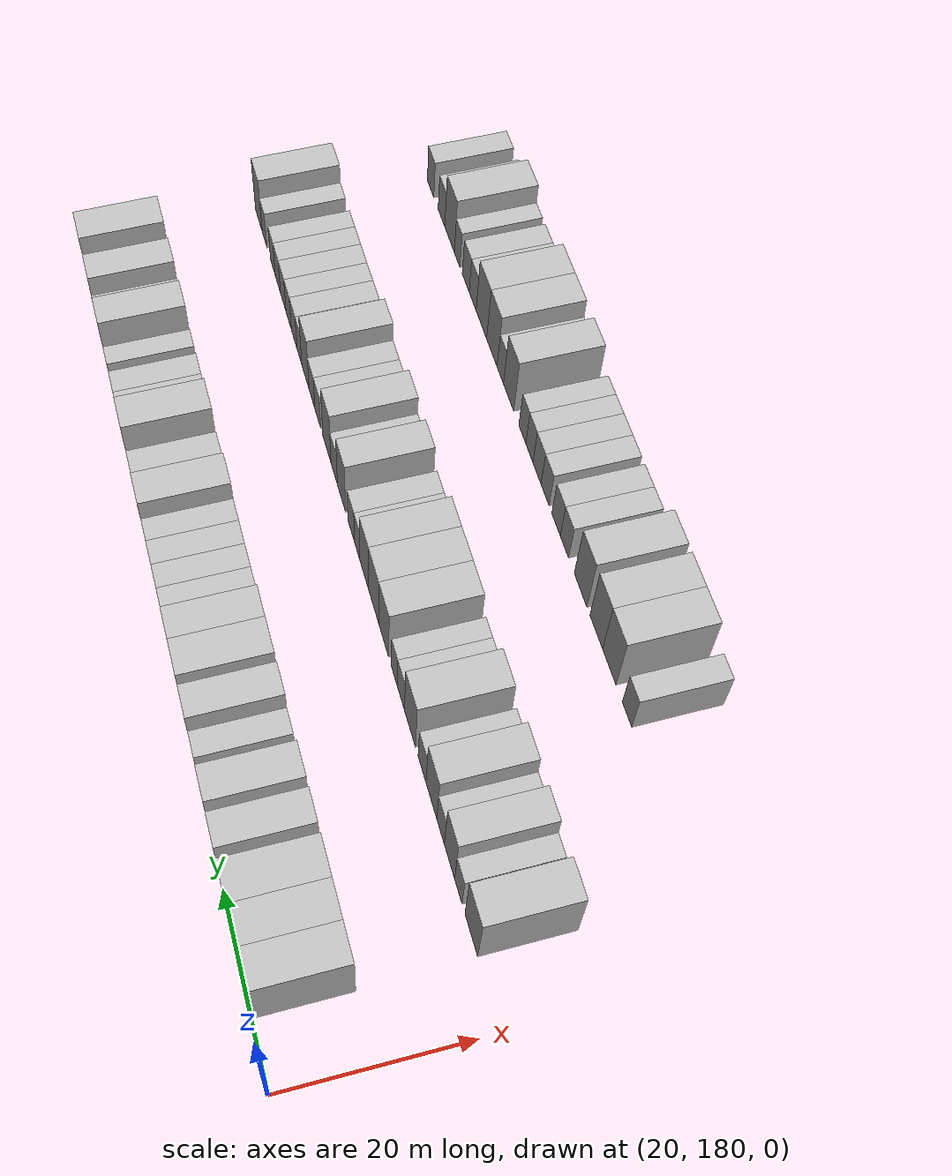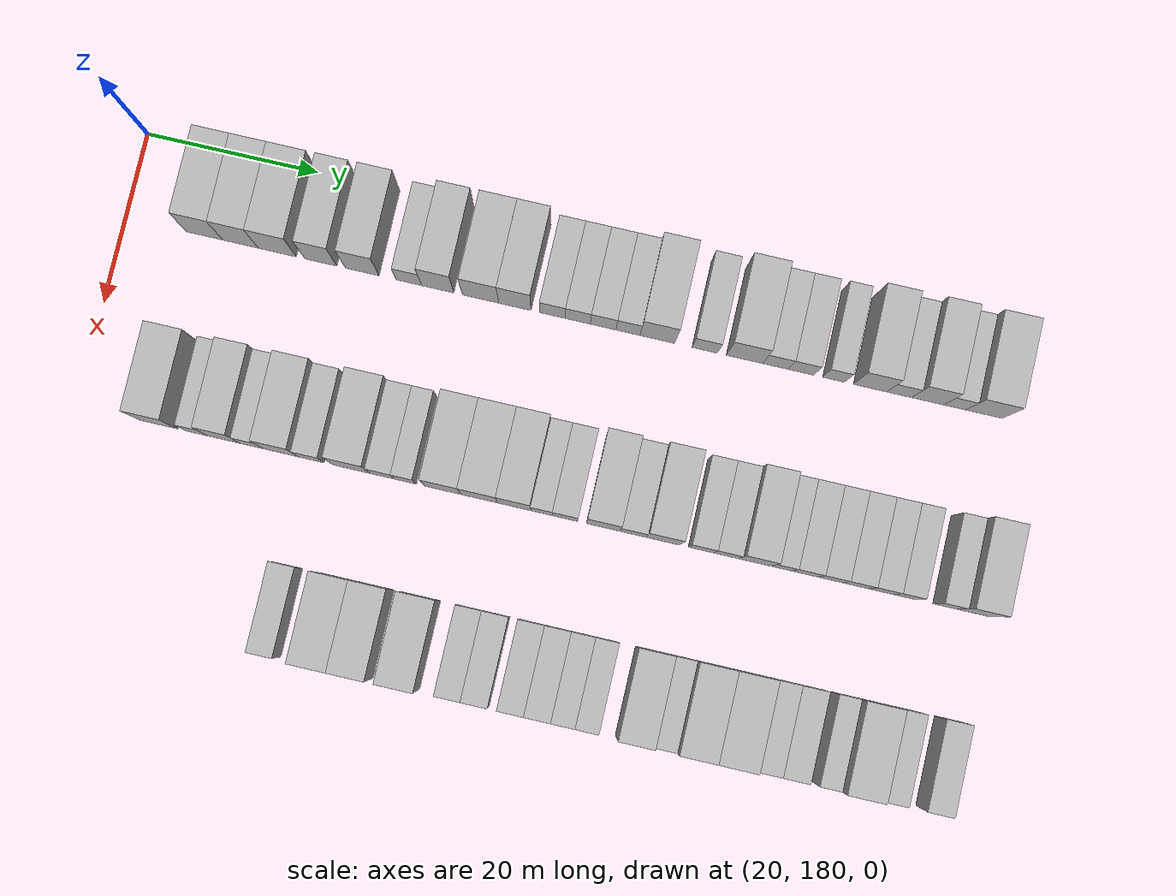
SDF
<sdf version="1.6">
 <world name="default">
  <model name="building_140">
   <static>1</static>
   <pose>25.0000 189.2454 0 0.000000 0.000000 0.000000</pose>
   <link name="link">
    <pose>0 0 4.50 0 0 0</pose>
    <collision name="collision"><geometry><box><size>10.0000 4.1937 9.0000</size></box></geometry></collision>
    <visual name="visual">
     <cast_shadows>0</cast_shadows>
     <geometry><box><size>10.0000 4.1937 9.0000</size></box></geometry>
     <material>
      <script>
       <uri>model://HANNAS_wall/materials/scripts</uri>
       <uri>model://HANNAS_wall/materials/textures</uri>
       <name>vrc/HANNAS_wall</name>
      </script>
     </material>
    </visual>
   </link>
  </model>
  <model name="building_141">
   <static>1</static>
   <pose>25.0000 193.4095 0 0.000000 0.000000 0.000000</pose>
   <link name="link">
    <pose>0 0 4.50 0 0 0</pose>
    <collision name="collision"><geometry><box><size>10.0000 4.1345 9.0000</size></box></geometry></collision>
    <visual name="visual">
     <cast_shadows>0</cast_shadows>
     <geometry><box><size>10.0000 4.1345 9.0000</size></box></geometry>
     <material>
      <script>
       <uri>model://HANNAS_wall/materials/scripts</uri>
       <uri>model://HANNAS_wall/materials/textures</uri>
       <name>vrc/HANNAS_wall</name>
      </script>
     </material>
    </visual>
   </link>
  </model>
  <model name="building_142">
   <static>1</static>
   <pose>25.0000 197.6893 0 0.000000 0.000000 0.000000</pose>
   <link name="link">
    <pose>0 0 4.50 0 0 0</pose>
    <collision name="collision"><geometry><box><size>10.0000 4.4251 9.0000</size></box></geometry></collision>
    <visual name="visual">
     <cast_shadows>0</cast_shadows>
     <geometry><box><size>10.0000 4.4251 9.0000</size></box></geometry>
     <material>
      <script>
       <uri>model://HANNAS_wall/materials/scripts</uri>
       <uri>model://HANNAS_wall/materials/textures</uri>
       <name>vrc/HANNAS_wall</name>
      </script>
     </material>
    </visual>
   </link>
  </model>
  <model name="building_143">
   <static>1</static>
   <pose>25.0000 202.7530 0 0.000000 0.000000 0.000000</pose>
   <link name="link">
    <pose>0 0 4.50 0 0 0</pose>
    <collision name="collision"><geometry><box><size>10.0000 3.7022 9.0000</size></box></geometry></collision>
    <visual name="visual">
     <cast_shadows>0</cast_shadows>
     <geometry><box><size>10.0000 3.7022 9.0000</size></box></geometry>
     <material>
      <script>
       <uri>model://HANNAS_wall/materials/scripts</uri>
       <uri>model://HANNAS_wall/materials/textures</uri>
       <name>vrc/HANNAS_wall</name>
      </script>
     </material>
    </visual>
   </link>
  </model>
  <model name="building_144">
   <static>1</static>
   <pose>25.0000 207.5599 0 0.000000 0.000000 0.000000</pose>
   <link name="link">
    <pose>0 0 4.50 0 0 0</pose>
    <collision name="collision"><geometry><box><size>10.0000 3.9117 9.0000</size></box></geometry></collision>
    <visual name="visual">
     <cast_shadows>0</cast_shadows>
     <geometry><box><size>10.0000 3.9117 9.0000</size></box></geometry>
     <material>
      <script>
       <uri>model://HANNAS_wall/materials/scripts</uri>
       <uri>model://HANNAS_wall/materials/textures</uri>
       <name>vrc/HANNAS_wall</name>
      </script>
     </material>
    </visual>
   </link>
  </model>
  <model name="building_145">
   <static>1</static>
   <pose>25.0000 212.9838 0 0.000000 0.000000 0.000000</pose>
   <link name="link">
    <pose>0 0 3.00 0 0 0</pose>
    <collision name="collision"><geometry><box><size>10.0000 2.9361 6.0000</size></box></geometry></collision>
    <visual name="visual">
     <cast_shadows>0</cast_shadows>
     <geometry><box><size>10.0000 2.9361 6.0000</size></box></geometry>
     <material>
      <script>
       <uri>model://HANNAS_wall/materials/scripts</uri>
       <uri>model://HANNAS_wall/materials/textures</uri>
       <name>vrc/HANNAS_wall</name>
      </script>
     </material>
    </visual>
   </link>
  </model>
  <model name="building_146">
   <static>1</static>
   <pose>25.0000 216.3185 0 0.000000 0.000000 0.000000</pose>
   <link name="link">
    <pose>0 0 4.50 0 0 0</pose>
    <collision name="collision"><geometry><box><size>10.0000 3.7333 9.0000</size></box></geometry></collision>
    <visual name="visual">
     <cast_shadows>0</cast_shadows>
     <geometry><box><size>10.0000 3.7333 9.0000</size></box></geometry>
     <material>
      <script>
       <uri>model://HANNAS_wall/materials/scripts</uri>
       <uri>model://HANNAS_wall/materials/textures</uri>
       <name>vrc/HANNAS_wall</name>
      </script>
     </material>
    </visual>
   </link>
  </model>
  <model name="building_147">
   <static>1</static>
   <pose>25.0000 221.2882 0 0.000000 0.000000 0.000000</pose>
   <link name="link">
    <pose>0 0 4.50 0 0 0</pose>
    <collision name="collision"><geometry><box><size>10.0000 4.2061 9.0000</size></box></geometry></collision>
    <visual name="visual">
     <cast_shadows>0</cast_shadows>
     <geometry><box><size>10.0000 4.2061 9.0000</size></box></geometry>
     <material>
      <script>
       <uri>model://HANNAS_wall/materials/scripts</uri>
       <uri>model://HANNAS_wall/materials/textures</uri>
       <name>vrc/HANNAS_wall</name>
      </script>
     </material>
    </visual>
   </link>
  </model>
  <model name="building_148">
   <static>1</static>
   <pose>25.0000 225.2576 0 0.000000 0.000000 0.000000</pose>
   <link name="link">
    <pose>0 0 4.50 0 0 0</pose>
    <collision name="collision"><geometry><box><size>10.0000 3.7326 9.0000</size></box></geometry></collision>
    <visual name="visual">
     <cast_shadows>0</cast_shadows>
     <geometry><box><size>10.0000 3.7326 9.0000</size></box></geometry>
     <material>
      <script>
       <uri>model://HANNAS_wall/materials/scripts</uri>
       <uri>model://HANNAS_wall/materials/textures</uri>
       <name>vrc/HANNAS_wall</name>
      </script>
     </material>
    </visual>
   </link>
  </model>
  <model name="building_149">
   <static>1</static>
   <pose>25.0000 229.5954 0 0.000000 0.000000 0.000000</pose>
   <link name="link">
    <pose>0 0 3.00 0 0 0</pose>
    <collision name="collision"><geometry><box><size>10.0000 2.9430 6.0000</size></box></geometry></collision>
    <visual name="visual">
     <cast_shadows>0</cast_shadows>
     <geometry><box><size>10.0000 2.9430 6.0000</size></box></geometry>
     <material>
      <script>
       <uri>model://HANNAS_wall/materials/scripts</uri>
       <uri>model://HANNAS_wall/materials/textures</uri>
       <name>vrc/HANNAS_wall</name>
      </script>
     </material>
    </visual>
   </link>
  </model>
  <model name="building_150">
   <static>1</static>
   <pose>25.0000 232.5193 0 0.000000 0.000000 0.000000</pose>
   <link name="link">
    <pose>0 0 3.00 0 0 0</pose>
    <collision name="collision"><geometry><box><size>10.0000 2.9049 6.0000</size></box></geometry></collision>
    <visual name="visual">
     <cast_shadows>0</cast_shadows>
     <geometry><box><size>10.0000 2.9049 6.0000</size></box></geometry>
     <material>
      <script>
       <uri>model://HANNAS_wall/materials/scripts</uri>
       <uri>model://HANNAS_wall/materials/textures</uri>
       <name>vrc/HANNAS_wall</name>
      </script>
     </material>
    </visual>
   </link>
  </model>
  <model name="building_151">
   <static>1</static>
   <pose>25.0000 235.4498 0 0.000000 0.000000 0.000000</pose>
   <link name="link">
    <pose>0 0 3.00 0 0 0</pose>
    <collision name="collision"><geometry><box><size>10.0000 2.9562 6.0000</size></box></geometry></collision>
    <visual name="visual">
     <cast_shadows>0</cast_shadows>
     <geometry><box><size>10.0000 2.9562 6.0000</size></box></geometry>
     <material>
      <script>
       <uri>model://HANNAS_wall/materials/scripts</uri>
       <uri>model://HANNAS_wall/materials/textures</uri>
       <name>vrc/HANNAS_wall</name>
      </script>
     </material>
    </visual>
   </link>
  </model>
  <model name="building_152">
   <static>1</static>
   <pose>25.0000 238.3135 0 0.000000 0.000000 0.000000</pose>
   <link name="link">
    <pose>0 0 3.00 0 0 0</pose>
    <collision name="collision"><geometry><box><size>10.0000 2.7711 6.0000</size></box></geometry></collision>
    <visual name="visual">
     <cast_shadows>0</cast_shadows>
     <geometry><box><size>10.0000 2.7711 6.0000</size></box></geometry>
     <material>
      <script>
       <uri>model://HANNAS_wall/materials/scripts</uri>
       <uri>model://HANNAS_wall/materials/textures</uri>
       <name>vrc/HANNAS_wall</name>
      </script>
     </material>
    </visual>
   </link>
  </model>
  <model name="building_153">
   <static>1</static>
   <pose>25.0000 241.7020 0 0.000000 0.000000 0.000000</pose>
   <link name="link">
    <pose>0 0 4.50 0 0 0</pose>
    <collision name="collision"><geometry><box><size>10.0000 4.0059 9.0000</size></box></geometry></collision>
    <visual name="visual">
     <cast_shadows>0</cast_shadows>
     <geometry><box><size>10.0000 4.0059 9.0000</size></box></geometry>
     <material>
      <script>
       <uri>model://HANNAS_wall/materials/scripts</uri>
       <uri>model://HANNAS_wall/materials/textures</uri>
       <name>vrc/HANNAS_wall</name>
      </script>
     </material>
    </visual>
   </link>
  </model>
  <model name="building_154">
   <static>1</static>
   <pose>25.0000 247.1800 0 0.000000 0.000000 0.000000</pose>
   <link name="link">
    <pose>0 0 3.00 0 0 0</pose>
    <collision name="collision"><geometry><box><size>10.0000 2.9500 6.0000</size></box></geometry></collision>
    <visual name="visual">
     <cast_shadows>0</cast_shadows>
     <geometry><box><size>10.0000 2.9500 6.0000</size></box></geometry>
     <material>
      <script>
       <uri>model://HANNAS_wall/materials/scripts</uri>
       <uri>model://HANNAS_wall/materials/textures</uri>
       <name>vrc/HANNAS_wall</name>
      </script>
     </material>
    </visual>
   </link>
  </model>
  <model name="building_155">
   <static>1</static>
   <pose>25.0000 251.7447 0 0.000000 0.000000 0.000000</pose>
   <link name="link">
    <pose>0 0 4.50 0 0 0</pose>
    <collision name="collision"><geometry><box><size>10.0000 4.1795 9.0000</size></box></geometry></collision>
    <visual name="visual">
     <cast_shadows>0</cast_shadows>
     <geometry><box><size>10.0000 4.1795 9.0000</size></box></geometry>
     <material>
      <script>
       <uri>model://HANNAS_wall/materials/scripts</uri>
       <uri>model://HANNAS_wall/materials/textures</uri>
       <name>vrc/HANNAS_wall</name>
      </script>
     </material>
    </visual>
   </link>
  </model>
  <model name="building_156">
   <static>1</static>
   <pose>25.0000 255.3090 0 0.000000 0.000000 0.000000</pose>
   <link name="link">
    <pose>0 0 3.00 0 0 0</pose>
    <collision name="collision"><geometry><box><size>10.0000 2.9490 6.0000</size></box></geometry></collision>
    <visual name="visual">
     <cast_shadows>0</cast_shadows>
     <geometry><box><size>10.0000 2.9490 6.0000</size></box></geometry>
     <material>
      <script>
       <uri>model://HANNAS_wall/materials/scripts</uri>
       <uri>model://HANNAS_wall/materials/textures</uri>
       <name>vrc/HANNAS_wall</name>
      </script>
     </material>
    </visual>
   </link>
  </model>
  <model name="building_157">
   <static>1</static>
   <pose>25.0000 258.2600 0 0.000000 0.000000 0.000000</pose>
   <link name="link">
    <pose>0 0 3.00 0 0 0</pose>
    <collision name="collision"><geometry><box><size>10.0000 2.9530 6.0000</size></box></geometry></collision>
    <visual name="visual">
     <cast_shadows>0</cast_shadows>
     <geometry><box><size>10.0000 2.9530 6.0000</size></box></geometry>
     <material>
      <script>
       <uri>model://HANNAS_wall/materials/scripts</uri>
       <uri>model://HANNAS_wall/materials/textures</uri>
       <name>vrc/HANNAS_wall</name>
      </script>
     </material>
    </visual>
   </link>
  </model>
  <model name="building_158">
   <static>1</static>
   <pose>25.0000 262.0031 0 0.000000 0.000000 0.000000</pose>
   <link name="link">
    <pose>0 0 3.00 0 0 0</pose>
    <collision name="collision"><geometry><box><size>10.0000 2.5333 6.0000</size></box></geometry></collision>
    <visual name="visual">
     <cast_shadows>0</cast_shadows>
     <geometry><box><size>10.0000 2.5333 6.0000</size></box></geometry>
     <material>
      <script>
       <uri>model://HANNAS_wall/materials/scripts</uri>
       <uri>model://HANNAS_wall/materials/textures</uri>
       <name>vrc/HANNAS_wall</name>
      </script>
     </material>
    </visual>
   </link>
  </model>
  <model name="building_159">
   <static>1</static>
   <pose>25.0000 266.1835 0 0.000000 0.000000 0.000000</pose>
   <link name="link">
    <pose>0 0 4.50 0 0 0</pose>
    <collision name="collision"><geometry><box><size>10.0000 3.8274 9.0000</size></box></geometry></collision>
    <visual name="visual">
     <cast_shadows>0</cast_shadows>
     <geometry><box><size>10.0000 3.8274 9.0000</size></box></geometry>
     <material>
      <script>
       <uri>model://HANNAS_wall/materials/scripts</uri>
       <uri>model://HANNAS_wall/materials/textures</uri>
       <name>vrc/HANNAS_wall</name>
      </script>
     </material>
    </visual>
   </link>
  </model>
  <model name="building_160">
   <static>1</static>
   <pose>25.0000 269.5204 0 0.000000 0.000000 0.000000</pose>
   <link name="link">
    <pose>0 0 3.00 0 0 0</pose>
    <collision name="collision"><geometry><box><size>10.0000 2.8465 6.0000</size></box></geometry></collision>
    <visual name="visual">
     <cast_shadows>0</cast_shadows>
     <geometry><box><size>10.0000 2.8465 6.0000</size></box></geometry>
     <material>
      <script>
       <uri>model://HANNAS_wall/materials/scripts</uri>
       <uri>model://HANNAS_wall/materials/textures</uri>
       <name>vrc/HANNAS_wall</name>
      </script>
     </material>
    </visual>
   </link>
  </model>
  <model name="building_161">
   <static>1</static>
   <pose>25.0000 272.7795 0 0.000000 0.000000 0.000000</pose>
   <link name="link">
    <pose>0 0 4.50 0 0 0</pose>
    <collision name="collision"><geometry><box><size>10.0000 3.6715 9.0000</size></box></geometry></collision>
    <visual name="visual">
     <cast_shadows>0</cast_shadows>
     <geometry><box><size>10.0000 3.6715 9.0000</size></box></geometry>
     <material>
      <script>
       <uri>model://HANNAS_wall/materials/scripts</uri>
       <uri>model://HANNAS_wall/materials/textures</uri>
       <name>vrc/HANNAS_wall</name>
      </script>
     </material>
    </visual>
   </link>
  </model>
  <model name="building_162">
   <static>1</static>
   <pose>25.0000 275.8817 0 0.000000 0.000000 0.000000</pose>
   <link name="link">
    <pose>0 0 3.00 0 0 0</pose>
    <collision name="collision"><geometry><box><size>10.0000 2.5330 6.0000</size></box></geometry></collision>
    <visual name="visual">
     <cast_shadows>0</cast_shadows>
     <geometry><box><size>10.0000 2.5330 6.0000</size></box></geometry>
     <material>
      <script>
       <uri>model://HANNAS_wall/materials/scripts</uri>
       <uri>model://HANNAS_wall/materials/textures</uri>
       <name>vrc/HANNAS_wall</name>
      </script>
     </material>
    </visual>
   </link>
  </model>
  <model name="building_163">
   <static>1</static>
   <pose>25.0000 279.2330 0 0.000000 0.000000 0.000000</pose>
   <link name="link">
    <pose>0 0 4.50 0 0 0</pose>
    <collision name="collision"><geometry><box><size>10.0000 4.1696 9.0000</size></box></geometry></collision>
    <visual name="visual">
     <cast_shadows>0</cast_shadows>
     <geometry><box><size>10.0000 4.1696 9.0000</size></box></geometry>
     <material>
      <script>
       <uri>model://HANNAS_wall/materials/scripts</uri>
       <uri>model://HANNAS_wall/materials/textures</uri>
       <name>vrc/HANNAS_wall</name>
      </script>
     </material>
    </visual>
   </link>
  </model>
  <model name="building_329">
   <static>1</static>
   <pose>47.0000 189.5351 0 0.000000 0.000000 0.000000</pose>
   <link name="link">
    <pose>0 0 4.50 0 0 0</pose>
    <collision name="collision"><geometry><box><size>10.0000 4.2912 9.0000</size></box></geometry></collision>
    <visual name="visual">
     <cast_shadows>0</cast_shadows>
     <geometry><box><size>10.0000 4.2912 9.0000</size></box></geometry>
     <material>
      <script>
       <uri>model://HANNAS_wall/materials/scripts</uri>
       <uri>model://HANNAS_wall/materials/textures</uri>
       <name>vrc/HANNAS_wall</name>
      </script>
     </material>
    </visual>
   </link>
  </model>
  <model name="building_330">
   <static>1</static>
   <pose>47.0000 193.9598 0 0.000000 0.000000 0.000000</pose>
   <link name="link">
    <pose>0 0 3.00 0 0 0</pose>
    <collision name="collision"><geometry><box><size>10.0000 2.5583 6.0000</size></box></geometry></collision>
    <visual name="visual">
     <cast_shadows>0</cast_shadows>
     <geometry><box><size>10.0000 2.5583 6.0000</size></box></geometry>
     <material>
      <script>
       <uri>model://HANNAS_wall/materials/scripts</uri>
       <uri>model://HANNAS_wall/materials/textures</uri>
       <name>vrc/HANNAS_wall</name>
      </script>
     </material>
    </visual>
   </link>
  </model>
  <model name="building_331">
   <static>1</static>
   <pose>47.0000 197.0719 0 0.000000 0.000000 0.000000</pose>
   <link name="link">
    <pose>0 0 4.50 0 0 0</pose>
    <collision name="collision"><geometry><box><size>10.0000 3.6661 9.0000</size></box></geometry></collision>
    <visual name="visual">
     <cast_shadows>0</cast_shadows>
     <geometry><box><size>10.0000 3.6661 9.0000</size></box></geometry>
     <material>
      <script>
       <uri>model://HANNAS_wall/materials/scripts</uri>
       <uri>model://HANNAS_wall/materials/textures</uri>
       <name>vrc/HANNAS_wall</name>
      </script>
     </material>
    </visual>
   </link>
  </model>
  <model name="building_332">
   <static>1</static>
   <pose>47.0000 200.2560 0 0.000000 0.000000 0.000000</pose>
   <link name="link">
    <pose>0 0 3.00 0 0 0</pose>
    <collision name="collision"><geometry><box><size>10.0000 2.7021 6.0000</size></box></geometry></collision>
    <visual name="visual">
     <cast_shadows>0</cast_shadows>
     <geometry><box><size>10.0000 2.7021 6.0000</size></box></geometry>
     <material>
      <script>
       <uri>model://HANNAS_wall/materials/scripts</uri>
       <uri>model://HANNAS_wall/materials/textures</uri>
       <name>vrc/HANNAS_wall</name>
      </script>
     </material>
    </visual>
   </link>
  </model>
  <model name="building_333">
   <static>1</static>
   <pose>47.0000 203.6150 0 0.000000 0.000000 0.000000</pose>
   <link name="link">
    <pose>0 0 4.50 0 0 0</pose>
    <collision name="collision"><geometry><box><size>10.0000 4.0159 9.0000</size></box></geometry></collision>
    <visual name="visual">
     <cast_shadows>0</cast_shadows>
     <geometry><box><size>10.0000 4.0159 9.0000</size></box></geometry>
     <material>
      <script>
       <uri>model://HANNAS_wall/materials/scripts</uri>
       <uri>model://HANNAS_wall/materials/textures</uri>
       <name>vrc/HANNAS_wall</name>
      </script>
     </material>
    </visual>
   </link>
  </model>
  <model name="building_334">
   <static>1</static>
   <pose>47.0000 207.0984 0 0.000000 0.000000 0.000000</pose>
   <link name="link">
    <pose>0 0 3.00 0 0 0</pose>
    <collision name="collision"><geometry><box><size>10.0000 2.9509 6.0000</size></box></geometry></collision>
    <visual name="visual">
     <cast_shadows>0</cast_shadows>
     <geometry><box><size>10.0000 2.9509 6.0000</size></box></geometry>
     <material>
      <script>
       <uri>model://HANNAS_wall/materials/scripts</uri>
       <uri>model://HANNAS_wall/materials/textures</uri>
       <name>vrc/HANNAS_wall</name>
      </script>
     </material>
    </visual>
   </link>
  </model>
  <model name="building_335">
   <static>1</static>
   <pose>47.0000 211.7146 0 0.000000 0.000000 0.000000</pose>
   <link name="link">
    <pose>0 0 4.50 0 0 0</pose>
    <collision name="collision"><geometry><box><size>10.0000 4.2815 9.0000</size></box></geometry></collision>
    <visual name="visual">
     <cast_shadows>0</cast_shadows>
     <geometry><box><size>10.0000 4.2815 9.0000</size></box></geometry>
     <material>
      <script>
       <uri>model://HANNAS_wall/materials/scripts</uri>
       <uri>model://HANNAS_wall/materials/textures</uri>
       <name>vrc/HANNAS_wall</name>
      </script>
     </material>
    </visual>
   </link>
  </model>
  <model name="building_336">
   <static>1</static>
   <pose>47.0000 215.2776 0 0.000000 0.000000 0.000000</pose>
   <link name="link">
    <pose>0 0 3.00 0 0 0</pose>
    <collision name="collision"><geometry><box><size>10.0000 2.8447 6.0000</size></box></geometry></collision>
    <visual name="visual">
     <cast_shadows>0</cast_shadows>
     <geometry><box><size>10.0000 2.8447 6.0000</size></box></geometry>
     <material>
      <script>
       <uri>model://HANNAS_wall/materials/scripts</uri>
       <uri>model://HANNAS_wall/materials/textures</uri>
       <name>vrc/HANNAS_wall</name>
      </script>
     </material>
    </visual>
   </link>
  </model>
  <model name="building_337">
   <static>1</static>
   <pose>47.0000 217.9155 0 0.000000 0.000000 0.000000</pose>
   <link name="link">
    <pose>0 0 3.00 0 0 0</pose>
    <collision name="collision"><geometry><box><size>10.0000 2.4310 6.0000</size></box></geometry></collision>
    <visual name="visual">
     <cast_shadows>0</cast_shadows>
     <geometry><box><size>10.0000 2.4310 6.0000</size></box></geometry>
     <material>
      <script>
       <uri>model://HANNAS_wall/materials/scripts</uri>
       <uri>model://HANNAS_wall/materials/textures</uri>
       <name>vrc/HANNAS_wall</name>
      </script>
     </material>
    </visual>
   </link>
  </model>
  <model name="building_338">
   <static>1</static>
   <pose>47.0000 222.2063 0 0.000000 0.000000 0.000000</pose>
   <link name="link">
    <pose>0 0 4.50 0 0 0</pose>
    <collision name="collision"><geometry><box><size>10.0000 4.1507 9.0000</size></box></geometry></collision>
    <visual name="visual">
     <cast_shadows>0</cast_shadows>
     <geometry><box><size>10.0000 4.1507 9.0000</size></box></geometry>
     <material>
      <script>
       <uri>model://HANNAS_wall/materials/scripts</uri>
       <uri>model://HANNAS_wall/materials/textures</uri>
       <name>vrc/HANNAS_wall</name>
      </script>
     </material>
    </visual>
   </link>
  </model>
  <model name="building_339">
   <static>1</static>
   <pose>47.0000 226.3808 0 0.000000 0.000000 0.000000</pose>
   <link name="link">
    <pose>0 0 4.50 0 0 0</pose>
    <collision name="collision"><geometry><box><size>10.0000 4.1982 9.0000</size></box></geometry></collision>
    <visual name="visual">
     <cast_shadows>0</cast_shadows>
     <geometry><box><size>10.0000 4.1982 9.0000</size></box></geometry>
     <material>
      <script>
       <uri>model://HANNAS_wall/materials/scripts</uri>
       <uri>model://HANNAS_wall/materials/textures</uri>
       <name>vrc/HANNAS_wall</name>
      </script>
     </material>
    </visual>
   </link>
  </model>
  <model name="building_340">
   <static>1</static>
   <pose>47.0000 230.3634 0 0.000000 0.000000 0.000000</pose>
   <link name="link">
    <pose>0 0 4.50 0 0 0</pose>
    <collision name="collision"><geometry><box><size>10.0000 3.7671 9.0000</size></box></geometry></collision>
    <visual name="visual">
     <cast_shadows>0</cast_shadows>
     <geometry><box><size>10.0000 3.7671 9.0000</size></box></geometry>
     <material>
      <script>
       <uri>model://HANNAS_wall/materials/scripts</uri>
       <uri>model://HANNAS_wall/materials/textures</uri>
       <name>vrc/HANNAS_wall</name>
      </script>
     </material>
    </visual>
   </link>
  </model>
  <model name="building_341">
   <static>1</static>
   <pose>47.0000 233.4624 0 0.000000 0.000000 0.000000</pose>
   <link name="link">
    <pose>0 0 3.00 0 0 0</pose>
    <collision name="collision"><geometry><box><size>10.0000 2.4308 6.0000</size></box></geometry></collision>
    <visual name="visual">
     <cast_shadows>0</cast_shadows>
     <geometry><box><size>10.0000 2.4308 6.0000</size></box></geometry>
     <material>
      <script>
       <uri>model://HANNAS_wall/materials/scripts</uri>
       <uri>model://HANNAS_wall/materials/textures</uri>
       <name>vrc/HANNAS_wall</name>
      </script>
     </material>
    </visual>
   </link>
  </model>
  <model name="building_342">
   <static>1</static>
   <pose>47.0000 236.1251 0 0.000000 0.000000 0.000000</pose>
   <link name="link">
    <pose>0 0 3.00 0 0 0</pose>
    <collision name="collision"><geometry><box><size>10.0000 2.8946 6.0000</size></box></geometry></collision>
    <visual name="visual">
     <cast_shadows>0</cast_shadows>
     <geometry><box><size>10.0000 2.8946 6.0000</size></box></geometry>
     <material>
      <script>
       <uri>model://HANNAS_wall/materials/scripts</uri>
       <uri>model://HANNAS_wall/materials/textures</uri>
       <name>vrc/HANNAS_wall</name>
      </script>
     </material>
    </visual>
   </link>
  </model>
  <model name="building_343">
   <static>1</static>
   <pose>47.0000 240.4562 0 0.000000 0.000000 0.000000</pose>
   <link name="link">
    <pose>0 0 4.50 0 0 0</pose>
    <collision name="collision"><geometry><box><size>10.0000 3.7675 9.0000</size></box></geometry></collision>
    <visual name="visual">
     <cast_shadows>0</cast_shadows>
     <geometry><box><size>10.0000 3.7675 9.0000</size></box></geometry>
     <material>
      <script>
       <uri>model://HANNAS_wall/materials/scripts</uri>
       <uri>model://HANNAS_wall/materials/textures</uri>
       <name>vrc/HANNAS_wall</name>
      </script>
     </material>
    </visual>
   </link>
  </model>
  <model name="building_344">
   <static>1</static>
   <pose>47.0000 243.8338 0 0.000000 0.000000 0.000000</pose>
   <link name="link">
    <pose>0 0 3.00 0 0 0</pose>
    <collision name="collision"><geometry><box><size>10.0000 2.9877 6.0000</size></box></geometry></collision>
    <visual name="visual">
     <cast_shadows>0</cast_shadows>
     <geometry><box><size>10.0000 2.9877 6.0000</size></box></geometry>
     <material>
      <script>
       <uri>model://HANNAS_wall/materials/scripts</uri>
       <uri>model://HANNAS_wall/materials/textures</uri>
       <name>vrc/HANNAS_wall</name>
      </script>
     </material>
    </visual>
   </link>
  </model>
  <model name="building_345">
   <static>1</static>
   <pose>47.0000 247.2604 0 0.000000 0.000000 0.000000</pose>
   <link name="link">
    <pose>0 0 4.50 0 0 0</pose>
    <collision name="collision"><geometry><box><size>10.0000 3.8655 9.0000</size></box></geometry></collision>
    <visual name="visual">
     <cast_shadows>0</cast_shadows>
     <geometry><box><size>10.0000 3.8655 9.0000</size></box></geometry>
     <material>
      <script>
       <uri>model://HANNAS_wall/materials/scripts</uri>
       <uri>model://HANNAS_wall/materials/textures</uri>
       <name>vrc/HANNAS_wall</name>
      </script>
     </material>
    </visual>
   </link>
  </model>
  <model name="building_346">
   <static>1</static>
   <pose>47.0000 251.6124 0 0.000000 0.000000 0.000000</pose>
   <link name="link">
    <pose>0 0 3.00 0 0 0</pose>
    <collision name="collision"><geometry><box><size>10.0000 2.8384 6.0000</size></box></geometry></collision>
    <visual name="visual">
     <cast_shadows>0</cast_shadows>
     <geometry><box><size>10.0000 2.8384 6.0000</size></box></geometry>
     <material>
      <script>
       <uri>model://HANNAS_wall/materials/scripts</uri>
       <uri>model://HANNAS_wall/materials/textures</uri>
       <name>vrc/HANNAS_wall</name>
      </script>
     </material>
    </visual>
   </link>
  </model>
  <model name="building_347">
   <static>1</static>
   <pose>47.0000 254.4365 0 0.000000 0.000000 0.000000</pose>
   <link name="link">
    <pose>0 0 3.00 0 0 0</pose>
    <collision name="collision"><geometry><box><size>10.0000 2.8099 6.0000</size></box></geometry></collision>
    <visual name="visual">
     <cast_shadows>0</cast_shadows>
     <geometry><box><size>10.0000 2.8099 6.0000</size></box></geometry>
     <material>
      <script>
       <uri>model://HANNAS_wall/materials/scripts</uri>
       <uri>model://HANNAS_wall/materials/textures</uri>
       <name>vrc/HANNAS_wall</name>
      </script>
     </material>
    </visual>
   </link>
  </model>
  <model name="building_348">
   <static>1</static>
   <pose>47.0000 257.6778 0 0.000000 0.000000 0.000000</pose>
   <link name="link">
    <pose>0 0 4.50 0 0 0</pose>
    <collision name="collision"><geometry><box><size>10.0000 3.6727 9.0000</size></box></geometry></collision>
    <visual name="visual">
     <cast_shadows>0</cast_shadows>
     <geometry><box><size>10.0000 3.6727 9.0000</size></box></geometry>
     <material>
      <script>
       <uri>model://HANNAS_wall/materials/scripts</uri>
       <uri>model://HANNAS_wall/materials/textures</uri>
       <name>vrc/HANNAS_wall</name>
      </script>
     </material>
    </visual>
   </link>
  </model>
  <model name="building_349">
   <static>1</static>
   <pose>47.0000 260.7254 0 0.000000 0.000000 0.000000</pose>
   <link name="link">
    <pose>0 0 3.00 0 0 0</pose>
    <collision name="collision"><geometry><box><size>10.0000 2.4224 6.0000</size></box></geometry></collision>
    <visual name="visual">
     <cast_shadows>0</cast_shadows>
     <geometry><box><size>10.0000 2.4224 6.0000</size></box></geometry>
     <material>
      <script>
       <uri>model://HANNAS_wall/materials/scripts</uri>
       <uri>model://HANNAS_wall/materials/textures</uri>
       <name>vrc/HANNAS_wall</name>
      </script>
     </material>
    </visual>
   </link>
  </model>
  <model name="building_350">
   <static>1</static>
   <pose>47.0000 263.4015 0 0.000000 0.000000 0.000000</pose>
   <link name="link">
    <pose>0 0 3.00 0 0 0</pose>
    <collision name="collision"><geometry><box><size>10.0000 2.9299 6.0000</size></box></geometry></collision>
    <visual name="visual">
     <cast_shadows>0</cast_shadows>
     <geometry><box><size>10.0000 2.9299 6.0000</size></box></geometry>
     <material>
      <script>
       <uri>model://HANNAS_wall/materials/scripts</uri>
       <uri>model://HANNAS_wall/materials/textures</uri>
       <name>vrc/HANNAS_wall</name>
      </script>
     </material>
    </visual>
   </link>
  </model>
  <model name="building_351">
   <static>1</static>
   <pose>47.0000 266.2505 0 0.000000 0.000000 0.000000</pose>
   <link name="link">
    <pose>0 0 3.00 0 0 0</pose>
    <collision name="collision"><geometry><box><size>10.0000 2.7680 6.0000</size></box></geometry></collision>
    <visual name="visual">
     <cast_shadows>0</cast_shadows>
     <geometry><box><size>10.0000 2.7680 6.0000</size></box></geometry>
     <material>
      <script>
       <uri>model://HANNAS_wall/materials/scripts</uri>
       <uri>model://HANNAS_wall/materials/textures</uri>
       <name>vrc/HANNAS_wall</name>
      </script>
     </material>
    </visual>
   </link>
  </model>
  <model name="building_352">
   <static>1</static>
   <pose>47.0000 269.1079 0 0.000000 0.000000 0.000000</pose>
   <link name="link">
    <pose>0 0 3.00 0 0 0</pose>
    <collision name="collision"><geometry><box><size>10.0000 2.9468 6.0000</size></box></geometry></collision>
    <visual name="visual">
     <cast_shadows>0</cast_shadows>
     <geometry><box><size>10.0000 2.9468 6.0000</size></box></geometry>
     <material>
      <script>
       <uri>model://HANNAS_wall/materials/scripts</uri>
       <uri>model://HANNAS_wall/materials/textures</uri>
       <name>vrc/HANNAS_wall</name>
      </script>
     </material>
    </visual>
   </link>
  </model>
  <model name="building_353">
   <static>1</static>
   <pose>47.0000 271.9712 0 0.000000 0.000000 0.000000</pose>
   <link name="link">
    <pose>0 0 3.00 0 0 0</pose>
    <collision name="collision"><geometry><box><size>10.0000 2.7799 6.0000</size></box></geometry></collision>
    <visual name="visual">
     <cast_shadows>0</cast_shadows>
     <geometry><box><size>10.0000 2.7799 6.0000</size></box></geometry>
     <material>
      <script>
       <uri>model://HANNAS_wall/materials/scripts</uri>
       <uri>model://HANNAS_wall/materials/textures</uri>
       <name>vrc/HANNAS_wall</name>
      </script>
     </material>
    </visual>
   </link>
  </model>
  <model name="building_354">
   <static>1</static>
   <pose>47.0000 274.6646 0 0.000000 0.000000 0.000000</pose>
   <link name="link">
    <pose>0 0 3.00 0 0 0</pose>
    <collision name="collision"><geometry><box><size>10.0000 2.6069 6.0000</size></box></geometry></collision>
    <visual name="visual">
     <cast_shadows>0</cast_shadows>
     <geometry><box><size>10.0000 2.6069 6.0000</size></box></geometry>
     <material>
      <script>
       <uri>model://HANNAS_wall/materials/scripts</uri>
       <uri>model://HANNAS_wall/materials/textures</uri>
       <name>vrc/HANNAS_wall</name>
      </script>
     </material>
    </visual>
   </link>
  </model>
  <model name="building_355">
   <static>1</static>
   <pose>47.0000 279.2722 0 0.000000 0.000000 0.000000</pose>
   <link name="link">
    <pose>0 0 3.00 0 0 0</pose>
    <collision name="collision"><geometry><box><size>10.0000 2.6082 6.0000</size></box></geometry></collision>
    <visual name="visual">
     <cast_shadows>0</cast_shadows>
     <geometry><box><size>10.0000 2.6082 6.0000</size></box></geometry>
     <material>
      <script>
       <uri>model://HANNAS_wall/materials/scripts</uri>
       <uri>model://HANNAS_wall/materials/textures</uri>
       <name>vrc/HANNAS_wall</name>
      </script>
     </material>
    </visual>
   </link>
  </model>
  <model name="building_356">
   <static>1</static>
   <pose>47.0000 282.4522 0 0.000000 0.000000 0.000000</pose>
   <link name="link">
    <pose>0 0 4.50 0 0 0</pose>
    <collision name="collision"><geometry><box><size>10.0000 3.7520 9.0000</size></box></geometry></collision>
    <visual name="visual">
     <cast_shadows>0</cast_shadows>
     <geometry><box><size>10.0000 3.7520 9.0000</size></box></geometry>
     <material>
      <script>
       <uri>model://HANNAS_wall/materials/scripts</uri>
       <uri>model://HANNAS_wall/materials/textures</uri>
       <name>vrc/HANNAS_wall</name>
      </script>
     </material>
    </visual>
   </link>
  </model>
  <model name="building_521">
   <static>1</static>
   <pose>69.0000 207.5459 0 0.000000 0.000000 0.000000</pose>
   <link name="link">
    <pose>0 0 3.00 0 0 0</pose>
    <collision name="collision"><geometry><box><size>10.0000 2.9376 6.0000</size></box></geometry></collision>
    <visual name="visual">
     <cast_shadows>0</cast_shadows>
     <geometry><box><size>10.0000 2.9376 6.0000</size></box></geometry>
     <material>
      <script>
       <uri>model://HANNAS_wall/materials/scripts</uri>
       <uri>model://HANNAS_wall/materials/textures</uri>
       <name>vrc/HANNAS_wall</name>
      </script>
     </material>
    </visual>
   </link>
  </model>
  <model name="building_522">
   <static>1</static>
   <pose>69.0000 213.1712 0 0.000000 0.000000 0.000000</pose>
   <link name="link">
    <pose>0 0 4.50 0 0 0</pose>
    <collision name="collision"><geometry><box><size>10.0000 4.3131 9.0000</size></box></geometry></collision>
    <visual name="visual">
     <cast_shadows>0</cast_shadows>
     <geometry><box><size>10.0000 4.3131 9.0000</size></box></geometry>
     <material>
      <script>
       <uri>model://HANNAS_wall/materials/scripts</uri>
       <uri>model://HANNAS_wall/materials/textures</uri>
       <name>vrc/HANNAS_wall</name>
      </script>
     </material>
    </visual>
   </link>
  </model>
  <model name="building_523">
   <static>1</static>
   <pose>69.0000 217.4056 0 0.000000 0.000000 0.000000</pose>
   <link name="link">
    <pose>0 0 4.50 0 0 0</pose>
    <collision name="collision"><geometry><box><size>10.0000 4.1556 9.0000</size></box></geometry></collision>
    <visual name="visual">
     <cast_shadows>0</cast_shadows>
     <geometry><box><size>10.0000 4.1556 9.0000</size></box></geometry>
     <material>
      <script>
       <uri>model://HANNAS_wall/materials/scripts</uri>
       <uri>model://HANNAS_wall/materials/textures</uri>
       <name>vrc/HANNAS_wall</name>
      </script>
     </material>
    </visual>
   </link>
  </model>
  <model name="building_524">
   <static>1</static>
   <pose>69.0000 222.6230 0 0.000000 0.000000 0.000000</pose>
   <link name="link">
    <pose>0 0 4.50 0 0 0</pose>
    <collision name="collision"><geometry><box><size>10.0000 4.2792 9.0000</size></box></geometry></collision>
    <visual name="visual">
     <cast_shadows>0</cast_shadows>
     <geometry><box><size>10.0000 4.2792 9.0000</size></box></geometry>
     <material>
      <script>
       <uri>model://HANNAS_wall/materials/scripts</uri>
       <uri>model://HANNAS_wall/materials/textures</uri>
       <name>vrc/HANNAS_wall</name>
      </script>
     </material>
    </visual>
   </link>
  </model>
  <model name="building_525">
   <static>1</static>
   <pose>69.0000 228.2190 0 0.000000 0.000000 0.000000</pose>
   <link name="link">
    <pose>0 0 3.00 0 0 0</pose>
    <collision name="collision"><geometry><box><size>10.0000 2.9126 6.0000</size></box></geometry></collision>
    <visual name="visual">
     <cast_shadows>0</cast_shadows>
     <geometry><box><size>10.0000 2.9126 6.0000</size></box></geometry>
     <material>
      <script>
       <uri>model://HANNAS_wall/materials/scripts</uri>
       <uri>model://HANNAS_wall/materials/textures</uri>
       <name>vrc/HANNAS_wall</name>
      </script>
     </material>
    </visual>
   </link>
  </model>
  <model name="building_526">
   <static>1</static>
   <pose>69.0000 231.1720 0 0.000000 0.000000 0.000000</pose>
   <link name="link">
    <pose>0 0 3.00 0 0 0</pose>
    <collision name="collision"><geometry><box><size>10.0000 2.9935 6.0000</size></box></geometry></collision>
    <visual name="visual">
     <cast_shadows>0</cast_shadows>
     <geometry><box><size>10.0000 2.9935 6.0000</size></box></geometry>
     <material>
      <script>
       <uri>model://HANNAS_wall/materials/scripts</uri>
       <uri>model://HANNAS_wall/materials/textures</uri>
       <name>vrc/HANNAS_wall</name>
      </script>
     </material>
    </visual>
   </link>
  </model>
  <model name="building_527">
   <static>1</static>
   <pose>69.0000 235.1482 0 0.000000 0.000000 0.000000</pose>
   <link name="link">
    <pose>0 0 3.00 0 0 0</pose>
    <collision name="collision"><geometry><box><size>10.0000 2.9589 6.0000</size></box></geometry></collision>
    <visual name="visual">
     <cast_shadows>0</cast_shadows>
     <geometry><box><size>10.0000 2.9589 6.0000</size></box></geometry>
     <material>
      <script>
       <uri>model://HANNAS_wall/materials/scripts</uri>
       <uri>model://HANNAS_wall/materials/textures</uri>
       <name>vrc/HANNAS_wall</name>
      </script>
     </material>
    </visual>
   </link>
  </model>
  <model name="building_528">
   <static>1</static>
   <pose>69.0000 238.1125 0 0.000000 0.000000 0.000000</pose>
   <link name="link">
    <pose>0 0 3.00 0 0 0</pose>
    <collision name="collision"><geometry><box><size>10.0000 2.9697 6.0000</size></box></geometry></collision>
    <visual name="visual">
     <cast_shadows>0</cast_shadows>
     <geometry><box><size>10.0000 2.9697 6.0000</size></box></geometry>
     <material>
      <script>
       <uri>model://HANNAS_wall/materials/scripts</uri>
       <uri>model://HANNAS_wall/materials/textures</uri>
       <name>vrc/HANNAS_wall</name>
      </script>
     </material>
    </visual>
   </link>
  </model>
  <model name="building_529">
   <static>1</static>
   <pose>69.0000 240.9370 0 0.000000 0.000000 0.000000</pose>
   <link name="link">
    <pose>0 0 3.00 0 0 0</pose>
    <collision name="collision"><geometry><box><size>10.0000 2.6793 6.0000</size></box></geometry></collision>
    <visual name="visual">
     <cast_shadows>0</cast_shadows>
     <geometry><box><size>10.0000 2.6793 6.0000</size></box></geometry>
     <material>
      <script>
       <uri>model://HANNAS_wall/materials/scripts</uri>
       <uri>model://HANNAS_wall/materials/textures</uri>
       <name>vrc/HANNAS_wall</name>
      </script>
     </material>
    </visual>
   </link>
  </model>
  <model name="building_530">
   <static>1</static>
   <pose>69.0000 243.5886 0 0.000000 0.000000 0.000000</pose>
   <link name="link">
    <pose>0 0 3.00 0 0 0</pose>
    <collision name="collision"><geometry><box><size>10.0000 2.6238 6.0000</size></box></geometry></collision>
    <visual name="visual">
     <cast_shadows>0</cast_shadows>
     <geometry><box><size>10.0000 2.6238 6.0000</size></box></geometry>
     <material>
      <script>
       <uri>model://HANNAS_wall/materials/scripts</uri>
       <uri>model://HANNAS_wall/materials/textures</uri>
       <name>vrc/HANNAS_wall</name>
      </script>
     </material>
    </visual>
   </link>
  </model>
  <model name="building_531">
   <static>1</static>
   <pose>69.0000 248.9062 0 0.000000 0.000000 0.000000</pose>
   <link name="link">
    <pose>0 0 4.50 0 0 0</pose>
    <collision name="collision"><geometry><box><size>10.0000 4.0115 9.0000</size></box></geometry></collision>
    <visual name="visual">
     <cast_shadows>0</cast_shadows>
     <geometry><box><size>10.0000 4.0115 9.0000</size></box></geometry>
     <material>
      <script>
       <uri>model://HANNAS_wall/materials/scripts</uri>
       <uri>model://HANNAS_wall/materials/textures</uri>
       <name>vrc/HANNAS_wall</name>
      </script>
     </material>
    </visual>
   </link>
  </model>
  <model name="building_532">
   <static>1</static>
   <pose>69.0000 252.1972 0 0.000000 0.000000 0.000000</pose>
   <link name="link">
    <pose>0 0 3.00 0 0 0</pose>
    <collision name="collision"><geometry><box><size>10.0000 2.5704 6.0000</size></box></geometry></collision>
    <visual name="visual">
     <cast_shadows>0</cast_shadows>
     <geometry><box><size>10.0000 2.5704 6.0000</size></box></geometry>
     <material>
      <script>
       <uri>model://HANNAS_wall/materials/scripts</uri>
       <uri>model://HANNAS_wall/materials/textures</uri>
       <name>vrc/HANNAS_wall</name>
      </script>
     </material>
    </visual>
   </link>
  </model>
  <model name="building_533">
   <static>1</static>
   <pose>69.0000 255.5799 0 0.000000 0.000000 0.000000</pose>
   <link name="link">
    <pose>0 0 4.50 0 0 0</pose>
    <collision name="collision"><geometry><box><size>10.0000 4.1950 9.0000</size></box></geometry></collision>
    <visual name="visual">
     <cast_shadows>0</cast_shadows>
     <geometry><box><size>10.0000 4.1950 9.0000</size></box></geometry>
     <material>
      <script>
       <uri>model://HANNAS_wall/materials/scripts</uri>
       <uri>model://HANNAS_wall/materials/textures</uri>
       <name>vrc/HANNAS_wall</name>
      </script>
     </material>
    </visual>
   </link>
  </model>
  <model name="building_534">
   <static>1</static>
   <pose>69.0000 259.8725 0 0.000000 0.000000 0.000000</pose>
   <link name="link">
    <pose>0 0 4.50 0 0 0</pose>
    <collision name="collision"><geometry><box><size>10.0000 4.3902 9.0000</size></box></geometry></collision>
    <visual name="visual">
     <cast_shadows>0</cast_shadows>
     <geometry><box><size>10.0000 4.3902 9.0000</size></box></geometry>
     <material>
      <script>
       <uri>model://HANNAS_wall/materials/scripts</uri>
       <uri>model://HANNAS_wall/materials/textures</uri>
       <name>vrc/HANNAS_wall</name>
      </script>
     </material>
    </visual>
   </link>
  </model>
  <model name="building_535">
   <static>1</static>
   <pose>69.0000 263.5295 0 0.000000 0.000000 0.000000</pose>
   <link name="link">
    <pose>0 0 3.00 0 0 0</pose>
    <collision name="collision"><geometry><box><size>10.0000 2.9238 6.0000</size></box></geometry></collision>
    <visual name="visual">
     <cast_shadows>0</cast_shadows>
     <geometry><box><size>10.0000 2.9238 6.0000</size></box></geometry>
     <material>
      <script>
       <uri>model://HANNAS_wall/materials/scripts</uri>
       <uri>model://HANNAS_wall/materials/textures</uri>
       <name>vrc/HANNAS_wall</name>
      </script>
     </material>
    </visual>
   </link>
  </model>
  <model name="building_536">
   <static>1</static>
   <pose>69.0000 266.4872 0 0.000000 0.000000 0.000000</pose>
   <link name="link">
    <pose>0 0 3.00 0 0 0</pose>
    <collision name="collision"><geometry><box><size>10.0000 2.9914 6.0000</size></box></geometry></collision>
    <visual name="visual">
     <cast_shadows>0</cast_shadows>
     <geometry><box><size>10.0000 2.9914 6.0000</size></box></geometry>
     <material>
      <script>
       <uri>model://HANNAS_wall/materials/scripts</uri>
       <uri>model://HANNAS_wall/materials/textures</uri>
       <name>vrc/HANNAS_wall</name>
      </script>
     </material>
    </visual>
   </link>
  </model>
  <model name="building_537">
   <static>1</static>
   <pose>69.0000 270.2079 0 0.000000 0.000000 0.000000</pose>
   <link name="link">
    <pose>0 0 3.00 0 0 0</pose>
    <collision name="collision"><geometry><box><size>10.0000 2.4501 6.0000</size></box></geometry></collision>
    <visual name="visual">
     <cast_shadows>0</cast_shadows>
     <geometry><box><size>10.0000 2.4501 6.0000</size></box></geometry>
     <material>
      <script>
       <uri>model://HANNAS_wall/materials/scripts</uri>
       <uri>model://HANNAS_wall/materials/textures</uri>
       <name>vrc/HANNAS_wall</name>
      </script>
     </material>
    </visual>
   </link>
  </model>
  <model name="building_538">
   <static>1</static>
   <pose>69.0000 273.5625 0 0.000000 0.000000 0.000000</pose>
   <link name="link">
    <pose>0 0 4.50 0 0 0</pose>
    <collision name="collision"><geometry><box><size>10.0000 4.2590 9.0000</size></box></geometry></collision>
    <visual name="visual">
     <cast_shadows>0</cast_shadows>
     <geometry><box><size>10.0000 4.2590 9.0000</size></box></geometry>
     <material>
      <script>
       <uri>model://HANNAS_wall/materials/scripts</uri>
       <uri>model://HANNAS_wall/materials/textures</uri>
       <name>vrc/HANNAS_wall</name>
      </script>
     </material>
    </visual>
   </link>
  </model>
  <model name="building_539">
   <static>1</static>
   <pose>69.0000 277.1818 0 0.000000 0.000000 0.000000</pose>
   <link name="link">
    <pose>0 0 3.00 0 0 0</pose>
    <collision name="collision"><geometry><box><size>10.0000 2.9796 6.0000</size></box></geometry></collision>
    <visual name="visual">
     <cast_shadows>0</cast_shadows>
     <geometry><box><size>10.0000 2.9796 6.0000</size></box></geometry>
     <material>
      <script>
       <uri>model://HANNAS_wall/materials/scripts</uri>
       <uri>model://HANNAS_wall/materials/textures</uri>
       <name>vrc/HANNAS_wall</name>
      </script>
     </material>
    </visual>
   </link>
  </model>
  <model name="building_540">
   <static>1</static>
   <pose>69.0000 282.1539 0 0.000000 0.000000 0.000000</pose>
   <link name="link">
    <pose>0 0 3.00 0 0 0</pose>
    <collision name="collision"><geometry><box><size>10.0000 2.9646 6.0000</size></box></geometry></collision>
    <visual name="visual">
     <cast_shadows>0</cast_shadows>
     <geometry><box><size>10.0000 2.9646 6.0000</size></box></geometry>
     <material>
      <script>
       <uri>model://HANNAS_wall/materials/scripts</uri>
       <uri>model://HANNAS_wall/materials/textures</uri>
       <name>vrc/HANNAS_wall</name>
      </script>
     </material>
    </visual>
   </link>
  </model>
 </world>
</sdf>
